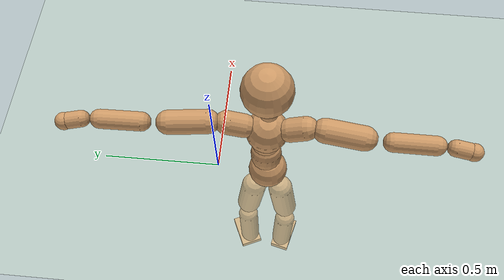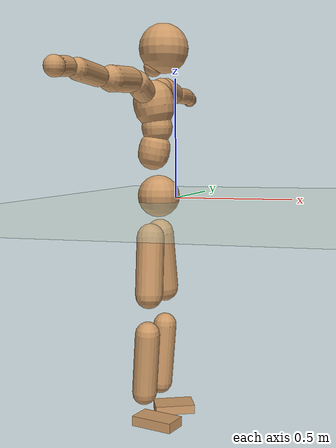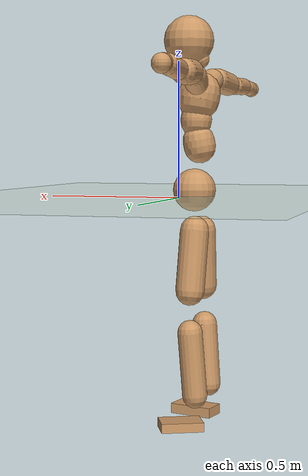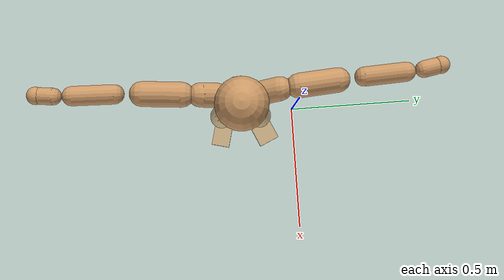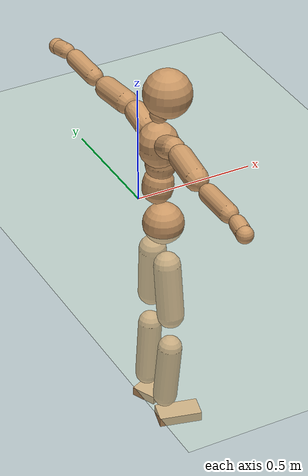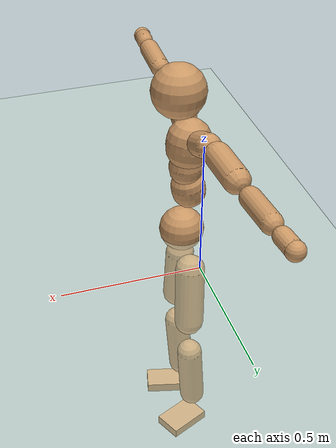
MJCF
<mujoco model="humanoid">
  <compiler coordinate="local"/>
  <default>
    <joint damping="0.0" armature="0.01" stiffness="0.0" limited="true"/>
    <geom conaffinity="1" condim="3" contype="7" margin="0.001" rgba="0.8 0.6 .4 1"/>
  </default>
  <asset>
    <texture type="skybox" builtin="gradient" rgb1=".4 .5 .6" rgb2="0 0 0" width="100" height="100"/>
    <texture builtin="flat" height="1278" mark="cross" markrgb="1 1 1" name="texgeom" random="0.01" rgb1="0.8 0.6 0.4" rgb2="0.8 0.6 0.4" type="cube" width="127"/>
    <texture builtin="checker" height="100" name="texplane" rgb1="0 0 0" rgb2="0.8 0.8 0.8" type="2d" width="100"/>
    <material name="MatPlane" reflectance="0.5" shininess="1" specular="1" texrepeat="60 60" texture="texplane"/>
    <material name="geom" texture="texgeom" texuniform="true"/>
  </asset>
  <worldbody>
    <light cutoff="100" diffuse="1 1 1" dir="-0 0 -1.3" directional="true" exponent="1" pos="0 0 1.3" specular=".1 .1 .1"/>
    <geom conaffinity="1" condim="3" name="floor" pos="0 0 0" rgba="0.8 0.9 0.8 1" size="100 100 .2" type="plane" material="MatPlane"/>
    <body name="Pelvis" pos="-0.0041 -0.2178 0.0205">
      <freejoint name="Pelvis"/>
      <geom type="sphere" contype="1" conaffinity="1" density="500" size="0.0832" pos="0.0000 0.0000 0.0000" name="Pelvis"/>
      <body name="L_Hip" pos="-0.0193 0.05 -0.0757">
        <joint name="L_Hip_x" type="hinge" pos="0 0 0" axis="1 0 0" stiffness="800" damping="80" armature="0.02" range="-180.0000 180.0000"/>
        <joint name="L_Hip_y" type="hinge" pos="0 0 0" axis="0 1 0" stiffness="800" damping="80" armature="0.02" range="-180.0000 180.0000"/>
        <joint name="L_Hip_z" type="hinge" pos="0 0 0" axis="0 0 1" stiffness="800" damping="80" armature="0.02" range="-180.0000 180.0000"/>
        <geom type="capsule" contype="1" conaffinity="1" density="500" fromto="0.0033 0.0097 -0.0774 0.0134 0.0389 -0.3095" size="0.0554" name="L_Hip"/>
        <body name="L_Knee" pos="0.0167 0.0486 -0.3868">
          <joint name="L_Knee_x" type="hinge" pos="0 0 0" axis="1 0 0" stiffness="800" damping="80" armature="0.02" range="-180.0000 180.0000"/>
          <joint name="L_Knee_y" type="hinge" pos="0 0 0" axis="0 1 0" stiffness="800" damping="80" armature="0.02" range="-180.0000 180.0000"/>
          <joint name="L_Knee_z" type="hinge" pos="0 0 0" axis="0 0 1" stiffness="800" damping="80" armature="0.02" range="-180.0000 180.0000"/>
          <geom type="capsule" contype="1" conaffinity="1" density="500" fromto="-0.0060 -0.0022 -0.0822 -0.0241 -0.0088 -0.3287" size="0.0481" name="L_Knee"/>
          <body name="L_Ankle" pos="-0.0301 -0.011 -0.4108">
            <joint name="L_Ankle_x" type="hinge" pos="0 0 0" axis="1 0 0" stiffness="800" damping="80" armature="0.02" range="-180.0000 180.0000"/>
            <joint name="L_Ankle_y" type="hinge" pos="0 0 0" axis="0 1 0" stiffness="800" damping="80" armature="0.02" range="-180.0000 180.0000"/>
            <joint name="L_Ankle_z" type="hinge" pos="0 0 0" axis="0 0 1" stiffness="800" damping="80" armature="0.02" range="-180.0000 180.0000"/>
            <geom type="box" contype="1" conaffinity="1" density="500" pos="0.0563 0.0254 -0.0294" size="0.0817 0.0539 0.0179" quat="0.9776 0.0000 0.0000 0.2104" name="L_Ankle"/>
            <body name="L_Toe" pos="0.1127 0.0508 -0.0589">
              <joint name="L_Toe_x" type="hinge" pos="0 0 0" axis="1 0 0" stiffness="500" damping="50" armature="0.02" range="-180.0000 180.0000"/>
              <joint name="L_Toe_y" type="hinge" pos="0 0 0" axis="0 1 0" stiffness="500" damping="50" armature="0.02" range="-180.0000 180.0000"/>
              <joint name="L_Toe_z" type="hinge" pos="0 0 0" axis="0 0 1" stiffness="500" damping="50" armature="0.02" range="-180.0000 180.0000"/>
              <geom type="box" contype="1" conaffinity="1" density="500" pos="0.0000 0.0000 0.0311" size="0.001 0.0025 0.001" quat="0.9768 0.0000 0.0000 0.2142" name="L_Toe"/>
            </body>
          </body>
        </body>
      </body>
      <body name="R_Hip" pos="-0.0159 -0.0503 -0.0836">
        <joint name="R_Hip_x" type="hinge" pos="0 0 0" axis="1 0 0" stiffness="800" damping="80" armature="0.02" range="-180.0000 180.0000"/>
        <joint name="R_Hip_y" type="hinge" pos="0 0 0" axis="0 1 0" stiffness="800" damping="80" armature="0.02" range="-180.0000 180.0000"/>
        <joint name="R_Hip_z" type="hinge" pos="0 0 0" axis="0 0 1" stiffness="800" damping="80" armature="0.02" range="-180.0000 180.0000"/>
        <geom type="capsule" contype="1" conaffinity="1" density="500" fromto="0.0004 -0.0092 -0.0753 0.0017 -0.0370 -0.3011" size="0.0544" name="R_Hip"/>
        <body name="R_Knee" pos="0.0021 -0.0462 -0.3764">
          <joint name="R_Knee_x" type="hinge" pos="0 0 0" axis="1 0 0" stiffness="800" damping="80" armature="0.02" range="-180.0000 180.0000"/>
          <joint name="R_Knee_y" type="hinge" pos="0 0 0" axis="0 1 0" stiffness="800" damping="80" armature="0.02" range="-180.0000 180.0000"/>
          <joint name="R_Knee_z" type="hinge" pos="0 0 0" axis="0 0 1" stiffness="800" damping="80" armature="0.02" range="-180.0000 180.0000"/>
          <geom type="capsule" contype="1" conaffinity="1" density="500" fromto="-0.0059 0.0031 -0.0802 -0.0236 0.0125 -0.3210" size="0.049" name="R_Knee"/>
          <body name="R_Ankle" pos="-0.0294 0.0157 -0.4012">
            <joint name="R_Ankle_x" type="hinge" pos="0 0 0" axis="1 0 0" stiffness="800" damping="80" armature="0.02" range="-180.0000 180.0000"/>
            <joint name="R_Ankle_y" type="hinge" pos="0 0 0" axis="0 1 0" stiffness="800" damping="80" armature="0.02" range="-180.0000 180.0000"/>
            <joint name="R_Ankle_z" type="hinge" pos="0 0 0" axis="0 0 1" stiffness="800" damping="80" armature="0.02" range="-180.0000 180.0000"/>
            <geom type="box" contype="1" conaffinity="1" density="500" pos="0.0612 -0.0155 -0.0291" size="0.0872 0.0465 0.0196" quat="0.9923 0.0000 0.0000 -0.1235" name="R_Ankle"/>
            <body name="R_Toe" pos="0.1224 -0.0309 -0.0582">
              <joint name="R_Toe_x" type="hinge" pos="0 0 0" axis="1 0 0" stiffness="500" damping="50" armature="0.02" range="-180.0000 180.0000"/>
              <joint name="R_Toe_y" type="hinge" pos="0 0 0" axis="0 1 0" stiffness="500" damping="50" armature="0.02" range="-180.0000 180.0000"/>
              <joint name="R_Toe_z" type="hinge" pos="0 0 0" axis="0 0 1" stiffness="500" damping="50" armature="0.02" range="-180.0000 180.0000"/>
              <geom type="box" contype="1" conaffinity="1" density="500" pos="0.0000 0.0000 0.0303" size="0.0009 0.0023 0.001" quat="0.9935 0.0000 0.0000 -0.1141" name="R_Toe"/>
            </body>
          </body>
        </body>
      </body>
      <body name="Torso" pos="-0.0328 0.0042 0.1133">
        <joint name="Torso_x" type="hinge" pos="0 0 0" axis="1 0 0" stiffness="1000" damping="100" armature="0.02" range="-180.0000 180.0000"/>
        <joint name="Torso_y" type="hinge" pos="0 0 0" axis="0 1 0" stiffness="1000" damping="100" armature="0.02" range="-180.0000 180.0000"/>
        <joint name="Torso_z" type="hinge" pos="0 0 0" axis="0 0 1" stiffness="1000" damping="100" armature="0.02" range="-180.0000 180.0000"/>
        <geom type="capsule" contype="1" conaffinity="1" density="500" fromto="0.0149 0.0028 0.0791 0.0100 0.0018 0.0527" size="0.061938" name="Torso"/>
        <body name="Spine" pos="0.0249 0.0046 0.1318">
          <joint name="Spine_x" type="hinge" pos="0 0 0" axis="1 0 0" stiffness="1000" damping="100" armature="0.02" range="-180.0000 180.0000"/>
          <joint name="Spine_y" type="hinge" pos="0 0 0" axis="0 1 0" stiffness="1000" damping="100" armature="0.02" range="-180.0000 180.0000"/>
          <joint name="Spine_z" type="hinge" pos="0 0 0" axis="0 0 1" stiffness="1000" damping="100" armature="0.02" range="-180.0000 180.0000"/>
          <geom type="capsule" contype="1" conaffinity="1" density="500" fromto="-0.0005 -0.0006 0.0317 -0.0003 -0.0004 0.0211" size="0.060729" name="Spine"/>
          <body name="Chest" pos="-0.0009 -0.001 0.0528">
            <joint name="Chest_x" type="hinge" pos="0 0 0" axis="1 0 0" stiffness="1000" damping="100" armature="0.02" range="-180.0000 180.0000"/>
            <joint name="Chest_y" type="hinge" pos="0 0 0" axis="0 1 0" stiffness="1000" damping="100" armature="0.02" range="-180.0000 180.0000"/>
            <joint name="Chest_z" type="hinge" pos="0 0 0" axis="0 0 1" stiffness="1000" damping="100" armature="0.02" range="-180.0000 180.0000"/>
            <geom type="capsule" contype="1" conaffinity="1" density="500" fromto="-0.0124 -0.0043 0.0783 -0.0082 -0.0029 0.0522" size="0.080631" name="Chest"/>
            <body name="Neck" pos="-0.0205 -0.011 0.1888">
              <joint name="Neck_x" type="hinge" pos="0 0 0" axis="1 0 0" stiffness="500" damping="50" armature="0.02" range="-180.0000 180.0000"/>
              <joint name="Neck_y" type="hinge" pos="0 0 0" axis="0 1 0" stiffness="500" damping="50" armature="0.02" range="-180.0000 180.0000"/>
              <joint name="Neck_z" type="hinge" pos="0 0 0" axis="0 0 1" stiffness="500" damping="50" armature="0.02" range="-180.0000 180.0000"/>
              <geom type="capsule" contype="1" conaffinity="1" density="500" fromto="0.0101 0.0022 0.0178 0.0404 0.0087 0.0713" size="0.037665" name="Neck"/>
              <body name="Head" pos="0.0505 0.0109 0.0891">
                <joint name="Head_x" type="hinge" pos="0 0 0" axis="1 0 0" stiffness="500" damping="50" armature="0.02" range="-180.0000 180.0000"/>
                <joint name="Head_y" type="hinge" pos="0 0 0" axis="0 1 0" stiffness="500" damping="50" armature="0.02" range="-180.0000 180.0000"/>
                <joint name="Head_z" type="hinge" pos="0 0 0" axis="0 0 1" stiffness="500" damping="50" armature="0.02" range="-180.0000 180.0000"/>
                <geom type="sphere" contype="1" conaffinity="1" density="500" size="0.0967" pos="0.0000 0.0000 0.0000" name="Head"/>
              </body>
            </body>
            <body name="L_Thorax" pos="-0.0186 0.0598 0.1022">
              <joint name="L_Thorax_x" type="hinge" pos="0 0 0" axis="1 0 0" stiffness="500" damping="50" armature="0.02" range="-180.0000 180.0000"/>
              <joint name="L_Thorax_y" type="hinge" pos="0 0 0" axis="0 1 0" stiffness="500" damping="50" armature="0.02" range="-180.0000 180.0000"/>
              <joint name="L_Thorax_z" type="hinge" pos="0 0 0" axis="0 0 1" stiffness="500" damping="50" armature="0.02" range="-180.0000 180.0000"/>
              <geom type="capsule" contype="1" conaffinity="1" density="500" fromto="-0.0023 0.0209 0.0086 -0.0091 0.0836 0.0342" size="0.0451" name="L_Thorax"/>
              <body name="L_Shoulder" pos="-0.0113 0.1045 0.0428">
                <joint name="L_Shoulder_x" type="hinge" pos="0 0 0" axis="1 0 0" stiffness="500" damping="50" armature="0.02" range="-720.0000 720.0000"/>
                <joint name="L_Shoulder_y" type="hinge" pos="0 0 0" axis="0 1 0" stiffness="500" damping="50" armature="0.02" range="-720.0000 720.0000"/>
                <joint name="L_Shoulder_z" type="hinge" pos="0 0 0" axis="0 0 1" stiffness="500" damping="50" armature="0.02" range="-720.0000 720.0000"/>
                <geom type="capsule" contype="1" conaffinity="1" density="500" fromto="-0.0037 0.0480 -0.0028 -0.0147 0.1920 -0.0112" size="0.0461" name="L_Shoulder"/>
                <body name="L_Elbow" pos="-0.0183 0.24 -0.014">
                  <joint name="L_Elbow_x" type="hinge" pos="0 0 0" axis="1 0 0" stiffness="500" damping="50" armature="0.02" range="-720.0000 720.0000"/>
                  <joint name="L_Elbow_y" type="hinge" pos="0 0 0" axis="0 1 0" stiffness="500" damping="50" armature="0.02" range="-720.0000 720.0000"/>
                  <joint name="L_Elbow_z" type="hinge" pos="0 0 0" axis="0 0 1" stiffness="500" damping="50" armature="0.02" range="-720.0000 720.0000"/>
                  <geom type="capsule" contype="1" conaffinity="1" density="500" fromto="-0.0021 0.0503 0.0022 -0.0082 0.2012 0.0088" size="0.0364" name="L_Elbow"/>
                  <body name="L_Wrist" pos="-0.0103 0.2514 0.011">
                    <joint name="L_Wrist_x" type="hinge" pos="0 0 0" axis="1 0 0" stiffness="300" damping="30" armature="0.02" range="-180.0000 180.0000"/>
                    <joint name="L_Wrist_y" type="hinge" pos="0 0 0" axis="0 1 0" stiffness="300" damping="30" armature="0.02" range="-180.0000 180.0000"/>
                    <joint name="L_Wrist_z" type="hinge" pos="0 0 0" axis="0 0 1" stiffness="300" damping="30" armature="0.02" range="-180.0000 180.0000"/>
                    <geom type="capsule" contype="1" conaffinity="1" density="500" fromto="-0.0030 0.0162 -0.0020 -0.0119 0.0650 -0.0079" size="0.0314" name="L_Wrist"/>
                    <body name="L_Hand" pos="-0.0148 0.0812 -0.0099">
                      <joint name="L_Hand_x" type="hinge" pos="0 0 0" axis="1 0 0" stiffness="300" damping="30" armature="0.02" range="-180.0000 180.0000"/>
                      <joint name="L_Hand_y" type="hinge" pos="0 0 0" axis="0 1 0" stiffness="300" damping="30" armature="0.02" range="-180.0000 180.0000"/>
                      <joint name="L_Hand_z" type="hinge" pos="0 0 0" axis="0 0 1" stiffness="300" damping="30" armature="0.02" range="-180.0000 180.0000"/>
                      <geom type="sphere" contype="1" conaffinity="1" density="500" size="0.0331" pos="0.0000 0.0000 0.0000" name="L_Hand"/>
                    </body>
                  </body>
                </body>
              </body>
            </body>
            <body name="R_Thorax" pos="-0.0228 -0.0706 0.1002">
              <joint name="R_Thorax_x" type="hinge" pos="0 0 0" axis="1 0 0" stiffness="500" damping="50" armature="0.02" range="-180.0000 180.0000"/>
              <joint name="R_Thorax_y" type="hinge" pos="0 0 0" axis="0 1 0" stiffness="500" damping="50" armature="0.02" range="-180.0000 180.0000"/>
              <joint name="R_Thorax_z" type="hinge" pos="0 0 0" axis="0 0 1" stiffness="500" damping="50" armature="0.02" range="-180.0000 180.0000"/>
              <geom type="capsule" contype="1" conaffinity="1" density="500" fromto="-0.0008 -0.0194 0.0085 -0.0030 -0.0774 0.0340" size="0.0457" name="R_Thorax"/>
              <body name="R_Shoulder" pos="-0.0038 -0.0968 0.0425">
                <joint name="R_Shoulder_x" type="hinge" pos="0 0 0" axis="1 0 0" stiffness="500" damping="50" armature="0.02" range="-720.0000 720.0000"/>
                <joint name="R_Shoulder_y" type="hinge" pos="0 0 0" axis="0 1 0" stiffness="500" damping="50" armature="0.02" range="-720.0000 720.0000"/>
                <joint name="R_Shoulder_z" type="hinge" pos="0 0 0" axis="0 0 1" stiffness="500" damping="50" armature="0.02" range="-720.0000 720.0000"/>
                <geom type="capsule" contype="1" conaffinity="1" density="500" fromto="-0.0046 -0.0486 -0.0033 -0.0185 -0.1945 -0.0130" size="0.0469" name="R_Shoulder"/>
                <body name="R_Elbow" pos="-0.0232 -0.2432 -0.0163">
                  <joint name="R_Elbow_x" type="hinge" pos="0 0 0" axis="1 0 0" stiffness="500" damping="50" armature="0.02" range="-720.0000 720.0000"/>
                  <joint name="R_Elbow_y" type="hinge" pos="0 0 0" axis="0 1 0" stiffness="500" damping="50" armature="0.02" range="-720.0000 720.0000"/>
                  <joint name="R_Elbow_z" type="hinge" pos="0 0 0" axis="0 0 1" stiffness="500" damping="50" armature="0.02" range="-720.0000 720.0000"/>
                  <geom type="capsule" contype="1" conaffinity="1" density="500" fromto="-0.0013 -0.0515 0.0021 -0.0051 -0.2061 0.0083" size="0.0366" name="R_Elbow"/>
                  <body name="R_Wrist" pos="-0.0064 -0.2576 0.0104">
                    <joint name="R_Wrist_x" type="hinge" pos="0 0 0" axis="1 0 0" stiffness="300" damping="30" armature="0.02" range="-180.0000 180.0000"/>
                    <joint name="R_Wrist_y" type="hinge" pos="0 0 0" axis="0 1 0" stiffness="300" damping="30" armature="0.02" range="-180.0000 180.0000"/>
                    <joint name="R_Wrist_z" type="hinge" pos="0 0 0" axis="0 0 1" stiffness="300" damping="30" armature="0.02" range="-180.0000 180.0000"/>
                    <geom type="capsule" contype="1" conaffinity="1" density="500" fromto="-0.0020 -0.0165 -0.0016 -0.0080 -0.0661 -0.0063" size="0.0317" name="R_Wrist"/>
                    <body name="R_Hand" pos="-0.01 -0.0826 -0.0079">
                      <joint name="R_Hand_x" type="hinge" pos="0 0 0" axis="1 0 0" stiffness="300" damping="30" armature="0.02" range="-180.0000 180.0000"/>
                      <joint name="R_Hand_y" type="hinge" pos="0 0 0" axis="0 1 0" stiffness="300" damping="30" armature="0.02" range="-180.0000 180.0000"/>
                      <joint name="R_Hand_z" type="hinge" pos="0 0 0" axis="0 0 1" stiffness="300" damping="30" armature="0.02" range="-180.0000 180.0000"/>
                      <geom type="sphere" contype="1" conaffinity="1" density="500" size="0.0334" pos="0.0000 0.0000 0.0000" name="R_Hand"/>
                    </body>
                  </body>
                </body>
              </body>
            </body>
          </body>
        </body>
      </body>
    </body>
  </worldbody>
  <actuator>
    <motor name="L_Hip_x" joint="L_Hip_x" gear="500"/>
    <motor name="L_Hip_y" joint="L_Hip_y" gear="500"/>
    <motor name="L_Hip_z" joint="L_Hip_z" gear="500"/>
    <motor name="L_Knee_x" joint="L_Knee_x" gear="500"/>
    <motor name="L_Knee_y" joint="L_Knee_y" gear="500"/>
    <motor name="L_Knee_z" joint="L_Knee_z" gear="500"/>
    <motor name="L_Ankle_x" joint="L_Ankle_x" gear="500"/>
    <motor name="L_Ankle_y" joint="L_Ankle_y" gear="500"/>
    <motor name="L_Ankle_z" joint="L_Ankle_z" gear="500"/>
    <motor name="L_Toe_x" joint="L_Toe_x" gear="500"/>
    <motor name="L_Toe_y" joint="L_Toe_y" gear="500"/>
    <motor name="L_Toe_z" joint="L_Toe_z" gear="500"/>
    <motor name="R_Hip_x" joint="R_Hip_x" gear="500"/>
    <motor name="R_Hip_y" joint="R_Hip_y" gear="500"/>
    <motor name="R_Hip_z" joint="R_Hip_z" gear="500"/>
    <motor name="R_Knee_x" joint="R_Knee_x" gear="500"/>
    <motor name="R_Knee_y" joint="R_Knee_y" gear="500"/>
    <motor name="R_Knee_z" joint="R_Knee_z" gear="500"/>
    <motor name="R_Ankle_x" joint="R_Ankle_x" gear="500"/>
    <motor name="R_Ankle_y" joint="R_Ankle_y" gear="500"/>
    <motor name="R_Ankle_z" joint="R_Ankle_z" gear="500"/>
    <motor name="R_Toe_x" joint="R_Toe_x" gear="500"/>
    <motor name="R_Toe_y" joint="R_Toe_y" gear="500"/>
    <motor name="R_Toe_z" joint="R_Toe_z" gear="500"/>
    <motor name="Torso_x" joint="Torso_x" gear="500"/>
    <motor name="Torso_y" joint="Torso_y" gear="500"/>
    <motor name="Torso_z" joint="Torso_z" gear="500"/>
    <motor name="Spine_x" joint="Spine_x" gear="500"/>
    <motor name="Spine_y" joint="Spine_y" gear="500"/>
    <motor name="Spine_z" joint="Spine_z" gear="500"/>
    <motor name="Chest_x" joint="Chest_x" gear="500"/>
    <motor name="Chest_y" joint="Chest_y" gear="500"/>
    <motor name="Chest_z" joint="Chest_z" gear="500"/>
    <motor name="Neck_x" joint="Neck_x" gear="500"/>
    <motor name="Neck_y" joint="Neck_y" gear="500"/>
    <motor name="Neck_z" joint="Neck_z" gear="500"/>
    <motor name="Head_x" joint="Head_x" gear="500"/>
    <motor name="Head_y" joint="Head_y" gear="500"/>
    <motor name="Head_z" joint="Head_z" gear="500"/>
    <motor name="L_Thorax_x" joint="L_Thorax_x" gear="500"/>
    <motor name="L_Thorax_y" joint="L_Thorax_y" gear="500"/>
    <motor name="L_Thorax_z" joint="L_Thorax_z" gear="500"/>
    <motor name="L_Shoulder_x" joint="L_Shoulder_x" gear="500"/>
    <motor name="L_Shoulder_y" joint="L_Shoulder_y" gear="500"/>
    <motor name="L_Shoulder_z" joint="L_Shoulder_z" gear="500"/>
    <motor name="L_Elbow_x" joint="L_Elbow_x" gear="500"/>
    <motor name="L_Elbow_y" joint="L_Elbow_y" gear="500"/>
    <motor name="L_Elbow_z" joint="L_Elbow_z" gear="500"/>
    <motor name="L_Wrist_x" joint="L_Wrist_x" gear="500"/>
    <motor name="L_Wrist_y" joint="L_Wrist_y" gear="500"/>
    <motor name="L_Wrist_z" joint="L_Wrist_z" gear="500"/>
    <motor name="L_Hand_x" joint="L_Hand_x" gear="500"/>
    <motor name="L_Hand_y" joint="L_Hand_y" gear="500"/>
    <motor name="L_Hand_z" joint="L_Hand_z" gear="500"/>
    <motor name="R_Thorax_x" joint="R_Thorax_x" gear="500"/>
    <motor name="R_Thorax_y" joint="R_Thorax_y" gear="500"/>
    <motor name="R_Thorax_z" joint="R_Thorax_z" gear="500"/>
    <motor name="R_Shoulder_x" joint="R_Shoulder_x" gear="500"/>
    <motor name="R_Shoulder_y" joint="R_Shoulder_y" gear="500"/>
    <motor name="R_Shoulder_z" joint="R_Shoulder_z" gear="500"/>
    <motor name="R_Elbow_x" joint="R_Elbow_x" gear="500"/>
    <motor name="R_Elbow_y" joint="R_Elbow_y" gear="500"/>
    <motor name="R_Elbow_z" joint="R_Elbow_z" gear="500"/>
    <motor name="R_Wrist_x" joint="R_Wrist_x" gear="500"/>
    <motor name="R_Wrist_y" joint="R_Wrist_y" gear="500"/>
    <motor name="R_Wrist_z" joint="R_Wrist_z" gear="500"/>
    <motor name="R_Hand_x" joint="R_Hand_x" gear="500"/>
    <motor name="R_Hand_y" joint="R_Hand_y" gear="500"/>
    <motor name="R_Hand_z" joint="R_Hand_z" gear="500"/>
  </actuator>
  <contact>
    <exclude body1="Torso" body2="Chest"/>
    <exclude body1="Head" body2="Chest"/>
    <exclude body1="R_Knee" body2="R_Toe"/>
    <exclude body1="R_Knee" body2="L_Ankle"/>
    <exclude body1="R_Knee" body2="L_Toe"/>
    <exclude body1="L_Knee" body2="L_Toe"/>
    <exclude body1="L_Knee" body2="R_Ankle"/>
    <exclude body1="L_Knee" body2="R_Toe"/>
    <exclude body1="L_Shoulder" body2="Chest"/>
    <exclude body1="R_Shoulder" body2="Chest"/>
  </contact>
  <sensor/>
  <size njmax="700" nconmax="700"/>
</mujoco>
